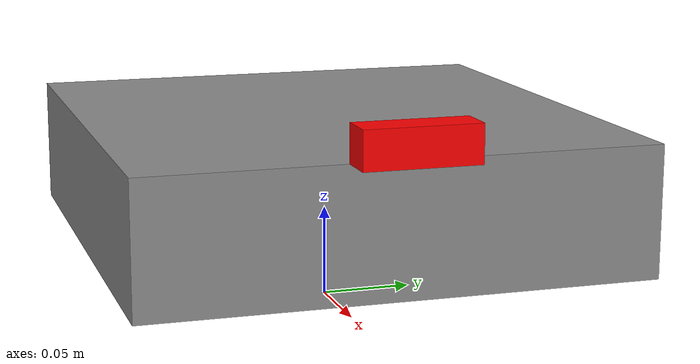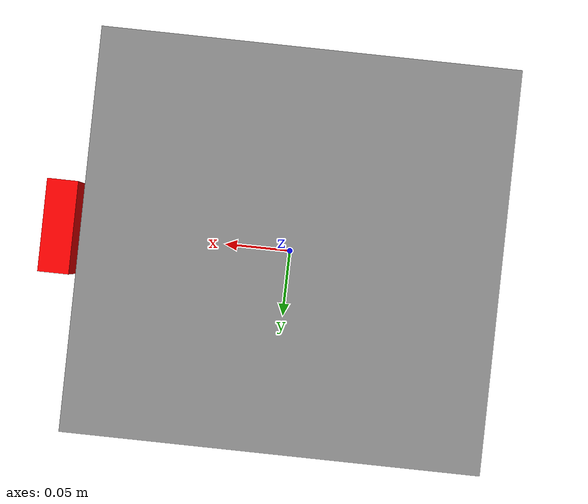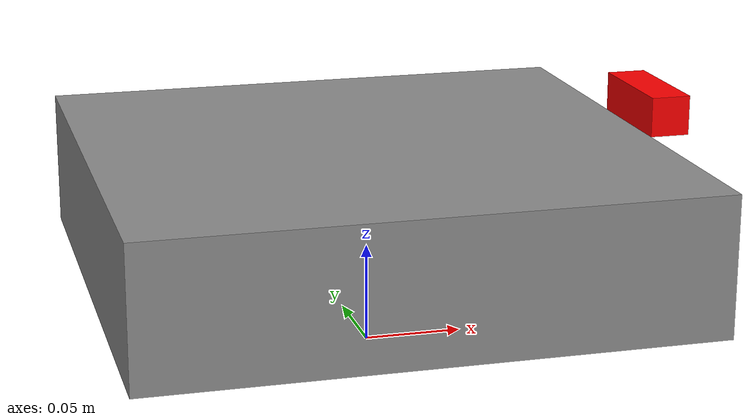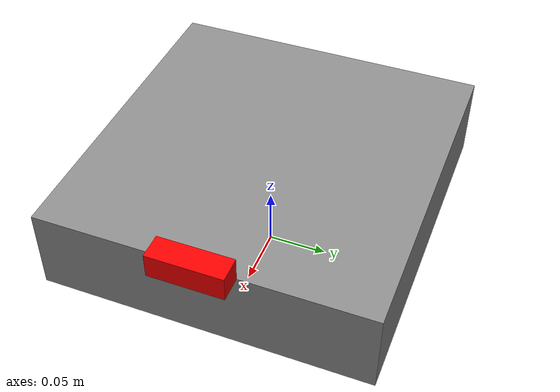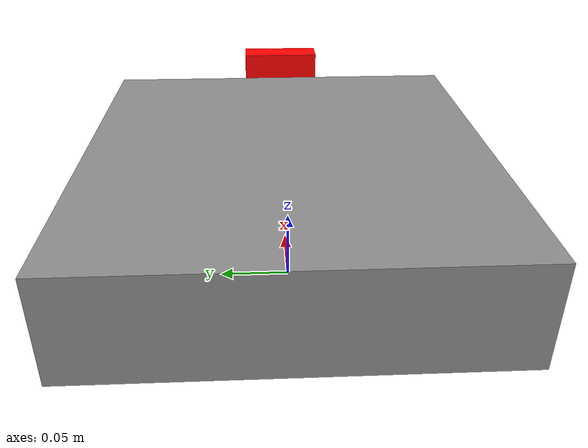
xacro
<?xml version="1.0"?>
<robot name="aic26_cobot" xmlns:xacro="http://wiki.ros.org/xacro">
  <xacro:property name="wheel_radius" value="0.07"/>
  <xacro:property name="laser_x" value="0.10"/>
  <xacro:property name="laser_y" value="0.0"/>
  <xacro:property name="laser_z" value="0.05"/>
  <xacro:property name="laser_yaw" value="0.0"/>
  <xacro:property name="camera_x" value="0.0975"/>
  <xacro:property name="camera_z" value="0.055"/>
  <xacro:property name="imu_z" value="0.02"/>

  <link name="base_footprint"/>

  <link name="base_link">
    <visual>
      <geometry>
        <box size="0.28 0.27 0.07"/>
      </geometry>
      <material name="body_grey">
        <color rgba="0.55 0.55 0.55 1.0"/>
      </material>
    </visual>
  </link>
  <joint name="base_link_joint" type="fixed">
    <parent link="base_footprint"/>
    <child link="base_link"/>
    <origin xyz="0 0 ${wheel_radius}" rpy="0 0 0"/>
  </joint>

  <link name="front_marker">
    <visual>
      <geometry>
        <box size="0.02 0.06 0.02"/>
      </geometry>
      <material name="front_red">
        <color rgba="1.0 0.0 0.0 1.0"/>
      </material>
    </visual>
  </link>
  <joint name="front_marker_joint" type="fixed">
    <parent link="base_link"/>
    <child link="front_marker"/>
    <origin xyz="0.15 0 0.045" rpy="0 0 0"/>
  </joint>

  <link name="laser"/>
  <joint name="laser_joint" type="fixed">
    <parent link="base_link"/>
    <child link="laser"/>
    <origin xyz="${laser_x} ${laser_y} ${laser_z}"
            rpy="0 0 ${laser_yaw}"/>
  </joint>

  <link name="camera"/>
  <joint name="camera_joint" type="fixed">
    <parent link="base_link"/>
    <child link="camera"/>
    <origin xyz="${camera_x} 0 ${camera_z}" rpy="0 0 0"/>
  </joint>

  <!-- REP 103 optical frame: z forward, x right, y down. -->
  <link name="camera_optical_frame"/>
  <joint name="camera_optical_joint" type="fixed">
    <parent link="camera"/>
    <child link="camera_optical_frame"/>
    <origin xyz="0 0 0" rpy="-1.57079632679 0 -1.57079632679"/>
  </joint>

  <link name="imu_link"/>
  <joint name="imu_joint" type="fixed">
    <parent link="base_link"/>
    <child link="imu_link"/>
    <origin xyz="0 0 ${imu_z}" rpy="0 0 0"/>
  </joint>
</robot>
